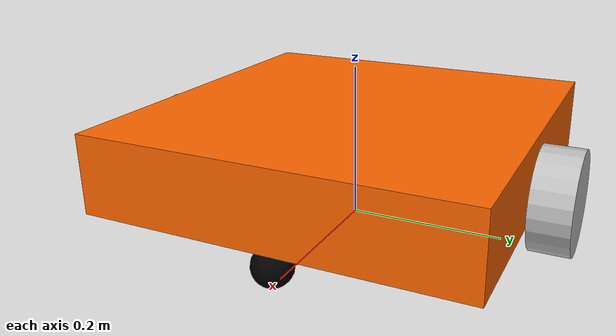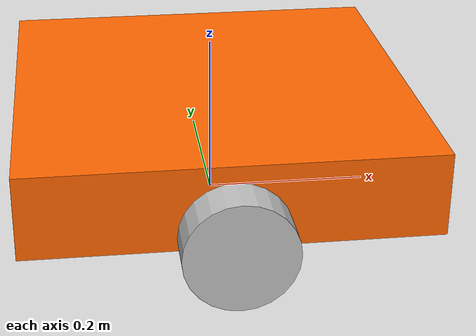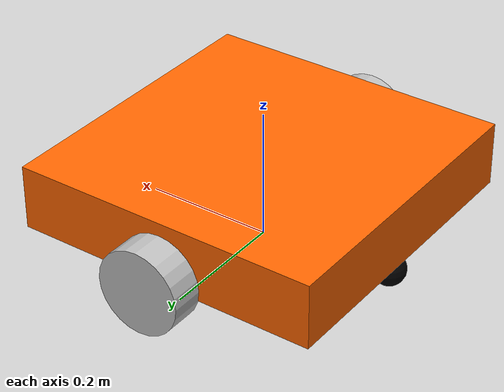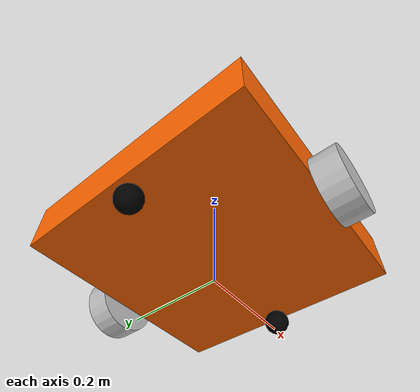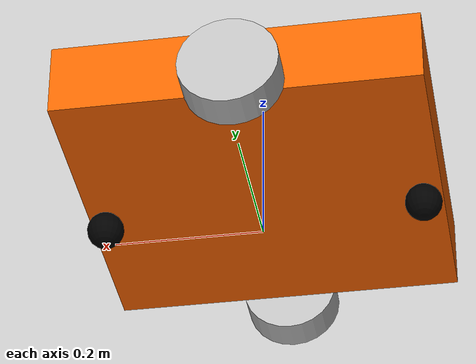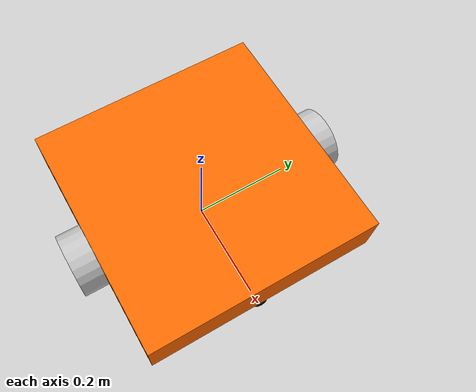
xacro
<?xml version="1.0"?>
<robot name="originbot"
    xmlns:xacro="http://www.ros.org/wiki/xacro">
    <!-- 大号机器人模型 -->
    <!-- PROPERTY LIST -->
    <xacro:property name="M_PI" value="3.1415926" />
    <xacro:property name="base_mass" value="10" />

    <xacro:property name="base_width" value="0.480" />
    <xacro:property name="base_length" value="0.480" />
    <xacro:property name="base_height" value="0.1" />

    <!-- 轮子 -->
    <xacro:property name="wheel_mass" value="1" />
    <xacro:property name="wheel_radius" value="0.065" />
    <xacro:property name="wheel_length" value="0.050" />

    <!-- base_length/2 = 0.16; x偏移-0.02-->
    <xacro:property name="wheel_joint_x" value="${0}" />
    <!-- (base_width+wheel_length)/2 轮距 -->
    <xacro:property name="wheel_joint_y" value="${(base_width+wheel_length)/2}" />
    <!-- base_height/2 = 0.05;向上偏移一点（-0.015） -->
    <xacro:property name="wheel_joint_z" value="${base_height/2 - 0.015}" />

    <!-- 支撑轮 -->
    <xacro:property name="caster_mass" value="0.4" />
    <!-- 计算中心到地面高度，再减去底盘得到底盘到地面高度:
    wheel_joint_z + wheel_radius  - base_height/2; -->
    <xacro:property name="caster_radius" value="${(wheel_joint_z + wheel_radius - base_height/2)/2}" />
    <!-- 与前轮对称 -->
    <xacro:property name="caster_joint_x" value="${base_length/2 - caster_radius}" />
    <xacro:property name="caster_joint_y" value="${0}" />

    <material name="yellow">
        <color rgba="1 0.4 0 1" />
    </material>
    <material name="black">
        <color rgba="0 0 0 0.95" />
    </material>
    <material name="gray">
        <color rgba="0.75 0.75 0.75 1" />
    </material>

    <!-- Macro for inertia matrix -->

    <xacro:macro name="inertial_matrix" params="m s">
    <xacro:property name="i" value="${m*s*s/6}" />
    <inertial>
        <mass value="${m}" />
        <inertia  ixx="${i}" ixy="0" ixz="0"
                iyy="${i}" iyz="0"
                izz="${i}" />
    </inertial>
    </xacro:macro>

    <xacro:macro name="box_inertia" params="m w h d">
    <inertial>
      <origin xyz="0 0 0" rpy="${pi/2} 0 ${pi/2}"/>
      <mass value="${m}"/>
      <inertia ixx="${(m/12) * (h*h + d*d)}" ixy="0.0" ixz="0.0" iyy="${(m/12) * (w*w + d*d)}" iyz="0.0" izz="${(m/12) * (w*w + h*h)}"/>
    </inertial>
    </xacro:macro>

    <xacro:macro name="cylinder_inertia" params="m r h">
    <inertial>
      <origin xyz="0 0 0" rpy="${pi/2} 0 0" />
      <mass value="${m}"/>
      <inertia ixx="${(m/12) * (3*r*r + h*h)}" ixy = "0" ixz = "0" iyy="${(m/12) * (3*r*r + h*h)}" iyz = "0" izz="${(m/2) * (r*r)}"/>
    </inertial>
    </xacro:macro>

    <!-- Macro for robot 轮子 -->
    <xacro:macro name="wheel" params="prefix reflect">
        <joint name="${prefix}_wheel_joint" type="continuous">
            <origin xyz="${wheel_joint_x} ${reflect*wheel_joint_y} ${-wheel_joint_z}"
                rpy="0 0 0" />
            <parent link="base_link" />
            <child link="${prefix}_wheel_link" />
            <axis xyz="0 1 0" />
        </joint>

        <link name="${prefix}_wheel_link">
            <visual>
                <origin xyz="0 0 0" rpy="${M_PI/2} 0 0" />
                <geometry>
                    <cylinder radius="${wheel_radius}" length="${wheel_length}" />
                </geometry>
                <material name="gray" />
            </visual>
            <collision>
                <origin xyz="0 0 0" rpy="${M_PI/2} 0 0" />
                <geometry>
                    <cylinder radius="${wheel_radius}" length="${wheel_length}" />
                </geometry>
            </collision>
            <!-- Wheel cylinders rotate about Y; use their own radius and width. -->
            <inertial>
                <mass value="${wheel_mass}" />
                <inertia ixx="${wheel_mass*(3*wheel_radius**2+wheel_length**2)/12}"
                         ixy="0" ixz="0"
                         iyy="${wheel_mass*wheel_radius**2/2}" iyz="0"
                         izz="${wheel_mass*(3*wheel_radius**2+wheel_length**2)/12}" />
            </inertial>
        </link>

    </xacro:macro>

    <!-- Macro for robot 支撑轮 -->
    <xacro:macro name="caster" params="prefix reflect">
        <joint name="${prefix}_caster_joint" type="fixed">
            <origin xyz="${reflect*caster_joint_x} ${caster_joint_y} ${-(base_height/2 + caster_radius)}"
                rpy="0 0 0" />
            <parent link="base_link" />
            <child link="${prefix}_caster_link" />
        </joint>

        <link name="${prefix}_caster_link">
            <visual>
                <origin xyz="0 0 0" rpy="0 0 0" />
                <geometry>
                    <sphere radius="${caster_radius}" />
                </geometry>
                <material name="black" />
            </visual>
            <collision>
                <origin xyz="0 0 0" rpy="0 0 0" />
                <geometry>
                    <sphere radius="${caster_radius}" />
                </geometry>
            </collision>
            <xacro:inertial_matrix m="${caster_mass}" s="${caster_radius}" />
        </link>

    </xacro:macro>

    <link name="base_footprint">
        <visual>
            <origin xyz="0 0 0" rpy="0 0 0" />
            <geometry>
                <box size="0.001 0.001 0.001" />
            </geometry>
        </visual>
    </link>

    <joint name="base_footprint_joint" type="fixed">
        <origin xyz="0 0 ${base_height/2 + caster_radius*2}" rpy="0 0 0" />
        <parent link="base_footprint" />
        <child link="base_link" />
    </joint>

    <link name="base_link">
        <visual>
            <origin xyz=" 0 0 0" rpy="0 0 0" />
            <geometry>
                <box size="${base_length} ${base_width} ${base_height}" />
            </geometry>
            <material name="yellow" />
        </visual>
        <collision>
            <origin xyz=" 0 0 0" rpy="0 0 0" />
            <geometry>
                <box size="${base_length} ${base_width+wheel_length*2} ${base_height}" />
            </geometry>
        </collision>
        <xacro:box_inertia m="${base_mass}" w="${base_width}" h="${base_height}" d="${base_length}" />

    </link>

    <xacro:wheel prefix="left" reflect="1" />
    <xacro:wheel prefix="right" reflect="-1" />

    <xacro:caster prefix="backr" reflect="-1" />
    <xacro:caster prefix="backl" reflect="1" />

</robot>
